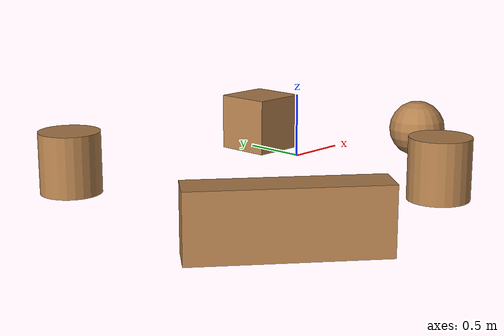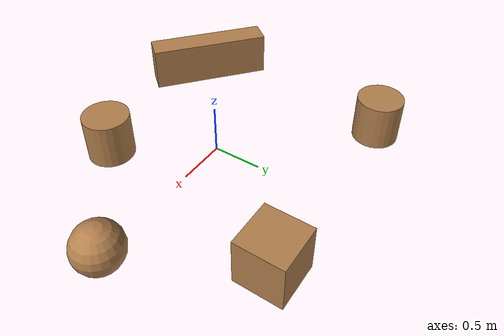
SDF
<?xml version='1.0'?>
<sdf version='1.7'>
  <model name='stage1_obs'>
    <link name='link_1'>
      <inertial>
        <mass>1</mass>
        <inertia>
          <ixx>0.166667</ixx>
          <ixy>0</ixy>
          <ixz>0</ixz>
          <iyy>0.166667</iyy>
          <iyz>0</iyz>
          <izz>0.166667</izz>
        </inertia>
        <pose>0 0 0 0 -0 0</pose>
      </inertial>
      <pose>0.813929 1.17131 0 0 -0 0</pose>
      <gravity>1</gravity>
      <self_collide>0</self_collide>
      <kinematic>0</kinematic>
      <enable_wind>0</enable_wind>
      <visual name='visual'>
        <pose>0 0 0 0 -0 0</pose>
        <geometry>
          <box>
            <size>0.5 0.5 0.5</size>
          </box>
        </geometry>
        <material>
          <lighting>1</lighting>
          <script>
            <uri>file://media/materials/scripts/gazebo.material</uri>
            <name>Gazebo/Wood</name>
          </script>
          <shader type='pixel'>
            <normal_map>__default__</normal_map>
          </shader>
          <ambient>0.3 0.3 0.3 1</ambient>
          <diffuse>0.7 0.7 0.7 1</diffuse>
          <specular>0.01 0.01 0.01 1</specular>
          <emissive>0 0 0 1</emissive>
        </material>
        <transparency>0</transparency>
        <cast_shadows>1</cast_shadows>
      </visual>
      <collision name='collision'>
        <laser_retro>0</laser_retro>
        <max_contacts>10</max_contacts>
        <pose>0 0 0 0 -0 0</pose>
        <geometry>
          <box>
            <size>0.5 0.5 0.5</size>
          </box>
        </geometry>
        <surface>
          <friction>
            <ode>
              <mu>1</mu>
              <mu2>1</mu2>
              <fdir1>0 0 0</fdir1>
              <slip1>0</slip1>
              <slip2>0</slip2>
            </ode>
            <torsional>
              <coefficient>1</coefficient>
              <patch_radius>0</patch_radius>
              <surface_radius>0</surface_radius>
              <use_patch_radius>1</use_patch_radius>
              <ode>
                <slip>0</slip>
              </ode>
            </torsional>
          </friction>
          <bounce>
            <restitution_coefficient>0</restitution_coefficient>
            <threshold>1e+06</threshold>
          </bounce>
          <contact>
            <collide_without_contact>0</collide_without_contact>
            <collide_without_contact_bitmask>1</collide_without_contact_bitmask>
            <collide_bitmask>1</collide_bitmask>
            <ode>
              <soft_cfm>0</soft_cfm>
              <soft_erp>0.2</soft_erp>
              <kp>1e+13</kp>
              <kd>1</kd>
              <max_vel>0.01</max_vel>
              <min_depth>0</min_depth>
            </ode>
            <bullet>
              <split_impulse>1</split_impulse>
              <split_impulse_penetration_threshold>-0.01</split_impulse_penetration_threshold>
              <soft_cfm>0</soft_cfm>
              <soft_erp>0.2</soft_erp>
              <kp>1e+13</kp>
              <kd>1</kd>
            </bullet>
          </contact>
        </surface>
      </collision>
    </link>
    <link name='link_2'>
      <inertial>
        <mass>1</mass>
        <inertia>
          <ixx>0.145833</ixx>
          <ixy>0</ixy>
          <ixz>0</ixz>
          <iyy>0.145833</iyy>
          <iyz>0</iyz>
          <izz>0.125</izz>
        </inertia>
        <pose>0 0 0 0 -0 0</pose>
      </inertial>
      <pose>0.442032 -1.08976 0 0 -0 0</pose>
      <gravity>1</gravity>
      <self_collide>0</self_collide>
      <kinematic>0</kinematic>
      <enable_wind>0</enable_wind>
      <visual name='visual'>
        <pose>0 0 0 0 -0 0</pose>
        <geometry>
          <cylinder>
            <radius>0.25</radius>
            <length>0.5</length>
          </cylinder>
        </geometry>
        <material>
          <lighting>1</lighting>
          <script>
            <uri>file://media/materials/scripts/gazebo.material</uri>
            <name>Gazebo/Wood</name>
          </script>
          <shader type='pixel'>
            <normal_map>__default__</normal_map>
          </shader>
          <ambient>0.3 0.3 0.3 1</ambient>
          <diffuse>0.7 0.7 0.7 1</diffuse>
          <specular>0.01 0.01 0.01 1</specular>
          <emissive>0 0 0 1</emissive>
        </material>
        <transparency>0</transparency>
        <cast_shadows>1</cast_shadows>
      </visual>
      <collision name='collision'>
        <laser_retro>0</laser_retro>
        <max_contacts>10</max_contacts>
        <pose>0 0 0 0 -0 0</pose>
        <geometry>
          <cylinder>
            <radius>0.25</radius>
            <length>0.5</length>
          </cylinder>
        </geometry>
        <surface>
          <friction>
            <ode>
              <mu>1</mu>
              <mu2>1</mu2>
              <fdir1>0 0 0</fdir1>
              <slip1>0</slip1>
              <slip2>0</slip2>
            </ode>
            <torsional>
              <coefficient>1</coefficient>
              <patch_radius>0</patch_radius>
              <surface_radius>0</surface_radius>
              <use_patch_radius>1</use_patch_radius>
              <ode>
                <slip>0</slip>
              </ode>
            </torsional>
          </friction>
          <bounce>
            <restitution_coefficient>0</restitution_coefficient>
            <threshold>1e+06</threshold>
          </bounce>
          <contact>
            <collide_without_contact>0</collide_without_contact>
            <collide_without_contact_bitmask>1</collide_without_contact_bitmask>
            <collide_bitmask>1</collide_bitmask>
            <ode>
              <soft_cfm>0</soft_cfm>
              <soft_erp>0.2</soft_erp>
              <kp>1e+13</kp>
              <kd>1</kd>
              <max_vel>0.01</max_vel>
              <min_depth>0</min_depth>
            </ode>
            <bullet>
              <split_impulse>1</split_impulse>
              <split_impulse_penetration_threshold>-0.01</split_impulse_penetration_threshold>
              <soft_cfm>0</soft_cfm>
              <soft_erp>0.2</soft_erp>
              <kp>1e+13</kp>
              <kd>1</kd>
            </bullet>
          </contact>
        </surface>
      </collision>
    </link>
    <link name='link_3'>
      <inertial>
        <mass>1</mass>
        <inertia>
          <ixx>0.145833</ixx>
          <ixy>0</ixy>
          <ixz>0</ixz>
          <iyy>0.145833</iyy>
          <iyz>0</iyz>
          <izz>0.125</izz>
        </inertia>
        <pose>0 0 0 0 -0 0</pose>
      </inertial>
      <pose>-1.41518 1.16132 0 0 -0 0</pose>
      <gravity>1</gravity>
      <self_collide>0</self_collide>
      <kinematic>0</kinematic>
      <enable_wind>0</enable_wind>
      <visual name='visual'>
        <pose>0 0 0 0 -0 0</pose>
        <geometry>
          <cylinder>
            <radius>0.25</radius>
            <length>0.5</length>
          </cylinder>
        </geometry>
        <material>
          <lighting>1</lighting>
          <script>
            <uri>file://media/materials/scripts/gazebo.material</uri>
            <name>Gazebo/Wood</name>
          </script>
          <shader type='pixel'>
            <normal_map>__default__</normal_map>
          </shader>
          <ambient>0.3 0.3 0.3 1</ambient>
          <diffuse>0.7 0.7 0.7 1</diffuse>
          <specular>0.01 0.01 0.01 1</specular>
          <emissive>0 0 0 1</emissive>
        </material>
        <transparency>0</transparency>
        <cast_shadows>1</cast_shadows>
      </visual>
      <collision name='collision'>
        <laser_retro>0</laser_retro>
        <max_contacts>10</max_contacts>
        <pose>0 0 0 0 -0 0</pose>
        <geometry>
          <cylinder>
            <radius>0.25</radius>
            <length>0.5</length>
          </cylinder>
        </geometry>
        <surface>
          <friction>
            <ode>
              <mu>1</mu>
              <mu2>1</mu2>
              <fdir1>0 0 0</fdir1>
              <slip1>0</slip1>
              <slip2>0</slip2>
            </ode>
            <torsional>
              <coefficient>1</coefficient>
              <patch_radius>0</patch_radius>
              <surface_radius>0</surface_radius>
              <use_patch_radius>1</use_patch_radius>
              <ode>
                <slip>0</slip>
              </ode>
            </torsional>
          </friction>
          <bounce>
            <restitution_coefficient>0</restitution_coefficient>
            <threshold>1e+06</threshold>
          </bounce>
          <contact>
            <collide_without_contact>0</collide_without_contact>
            <collide_without_contact_bitmask>1</collide_without_contact_bitmask>
            <collide_bitmask>1</collide_bitmask>
            <ode>
              <soft_cfm>0</soft_cfm>
              <soft_erp>0.2</soft_erp>
              <kp>1e+13</kp>
              <kd>1</kd>
              <max_vel>0.01</max_vel>
              <min_depth>0</min_depth>
            </ode>
            <bullet>
              <split_impulse>1</split_impulse>
              <split_impulse_penetration_threshold>-0.01</split_impulse_penetration_threshold>
              <soft_cfm>0</soft_cfm>
              <soft_erp>0.2</soft_erp>
              <kp>1e+13</kp>
              <kd>1</kd>
            </bullet>
          </contact>
        </surface>
      </collision>
    </link>
    <link name='link_4'>
      <inertial>
        <mass>1</mass>
        <inertia>
          <ixx>0.166667</ixx>
          <ixy>0</ixy>
          <ixz>0</ixz>
          <iyy>0.166667</iyy>
          <iyz>0</iyz>
          <izz>0.166667</izz>
        </inertia>
        <pose>0 0 0 0 -0 0</pose>
      </inertial>
      <pose>-1.40027 -1.14889 0 0 -0 0.884496</pose>
      <gravity>1</gravity>
      <self_collide>0</self_collide>
      <kinematic>0</kinematic>
      <enable_wind>0</enable_wind>
      <visual name='visual'>
        <pose>0 0 0 0 -0 0</pose>
        <geometry>
          <box>
            <size>0.3 1.4 0.5</size>
          </box>
        </geometry>
        <material>
          <lighting>1</lighting>
          <script>
            <uri>file://media/materials/scripts/gazebo.material</uri>
            <name>Gazebo/Wood</name>
          </script>
          <shader type='pixel'>
            <normal_map>__default__</normal_map>
          </shader>
          <ambient>0.3 0.3 0.3 1</ambient>
          <diffuse>0.7 0.7 0.7 1</diffuse>
          <specular>0.01 0.01 0.01 1</specular>
          <emissive>0 0 0 1</emissive>
        </material>
        <transparency>0</transparency>
        <cast_shadows>1</cast_shadows>
      </visual>
      <collision name='collision'>
        <laser_retro>0</laser_retro>
        <max_contacts>10</max_contacts>
        <pose>0 0 0 0 -0 0</pose>
        <geometry>
          <box>
            <size>0.3 1.4 0.5</size>
          </box>
        </geometry>
        <surface>
          <friction>
            <ode>
              <mu>1</mu>
              <mu2>1</mu2>
              <fdir1>0 0 0</fdir1>
              <slip1>0</slip1>
              <slip2>0</slip2>
            </ode>
            <torsional>
              <coefficient>1</coefficient>
              <patch_radius>0</patch_radius>
              <surface_radius>0</surface_radius>
              <use_patch_radius>1</use_patch_radius>
              <ode>
                <slip>0</slip>
              </ode>
            </torsional>
          </friction>
          <bounce>
            <restitution_coefficient>0</restitution_coefficient>
            <threshold>1e+06</threshold>
          </bounce>
          <contact>
            <collide_without_contact>0</collide_without_contact>
            <collide_without_contact_bitmask>1</collide_without_contact_bitmask>
            <collide_bitmask>1</collide_bitmask>
            <ode>
              <soft_cfm>0</soft_cfm>
              <soft_erp>0.2</soft_erp>
              <kp>1e+13</kp>
              <kd>1</kd>
              <max_vel>0.01</max_vel>
              <min_depth>0</min_depth>
            </ode>
            <bullet>
              <split_impulse>1</split_impulse>
              <split_impulse_penetration_threshold>-0.01</split_impulse_penetration_threshold>
              <soft_cfm>0</soft_cfm>
              <soft_erp>0.2</soft_erp>
              <kp>1e+13</kp>
              <kd>1</kd>
            </bullet>
          </contact>
        </surface>
      </collision>
    </link>
    <link name='link_5'>
      <inertial>
        <mass>1</mass>
        <inertia>
          <ixx>0.1</ixx>
          <ixy>0</ixy>
          <ixz>0</ixz>
          <iyy>0.1</iyy>
          <iyz>0</iyz>
          <izz>0.1</izz>
        </inertia>
        <pose>0 0 0 0 -0 0</pose>
      </inertial>
      <pose>1.55949 -0.093969 0 0 -0 0</pose>
      <gravity>1</gravity>
      <self_collide>0</self_collide>
      <kinematic>0</kinematic>
      <enable_wind>0</enable_wind>
      <visual name='visual'>
        <pose>0 0 0 0 -0 0</pose>
        <geometry>
          <sphere>
            <radius>0.25</radius>
          </sphere>
        </geometry>
        <material>
          <lighting>1</lighting>
          <script>
            <uri>file://media/materials/scripts/gazebo.material</uri>
            <name>Gazebo/Wood</name>
          </script>
          <shader type='pixel'>
            <normal_map>__default__</normal_map>
          </shader>
          <ambient>0.3 0.3 0.3 1</ambient>
          <diffuse>0.7 0.7 0.7 1</diffuse>
          <specular>0.01 0.01 0.01 1</specular>
          <emissive>0 0 0 1</emissive>
        </material>
        <transparency>0</transparency>
        <cast_shadows>1</cast_shadows>
      </visual>
      <collision name='collision'>
        <laser_retro>0</laser_retro>
        <max_contacts>10</max_contacts>
        <pose>0 0 0 0 -0 0</pose>
        <geometry>
          <sphere>
            <radius>0.25</radius>
          </sphere>
        </geometry>
        <surface>
          <friction>
            <ode>
              <mu>1</mu>
              <mu2>1</mu2>
              <fdir1>0 0 0</fdir1>
              <slip1>0</slip1>
              <slip2>0</slip2>
            </ode>
            <torsional>
              <coefficient>1</coefficient>
              <patch_radius>0</patch_radius>
              <surface_radius>0</surface_radius>
              <use_patch_radius>1</use_patch_radius>
              <ode>
                <slip>0</slip>
              </ode>
            </torsional>
          </friction>
          <bounce>
            <restitution_coefficient>0</restitution_coefficient>
            <threshold>1e+06</threshold>
          </bounce>
          <contact>
            <collide_without_contact>0</collide_without_contact>
            <collide_without_contact_bitmask>1</collide_without_contact_bitmask>
            <collide_bitmask>1</collide_bitmask>
            <ode>
              <soft_cfm>0</soft_cfm>
              <soft_erp>0.2</soft_erp>
              <kp>1e+13</kp>
              <kd>1</kd>
              <max_vel>0.01</max_vel>
              <min_depth>0</min_depth>
            </ode>
            <bullet>
              <split_impulse>1</split_impulse>
              <split_impulse_penetration_threshold>-0.01</split_impulse_penetration_threshold>
              <soft_cfm>0</soft_cfm>
              <soft_erp>0.2</soft_erp>
              <kp>1e+13</kp>
              <kd>1</kd>
            </bullet>
          </contact>
        </surface>
      </collision>
    </link>
    <static>1</static>
    <allow_auto_disable>1</allow_auto_disable>
  </model>
</sdf>
